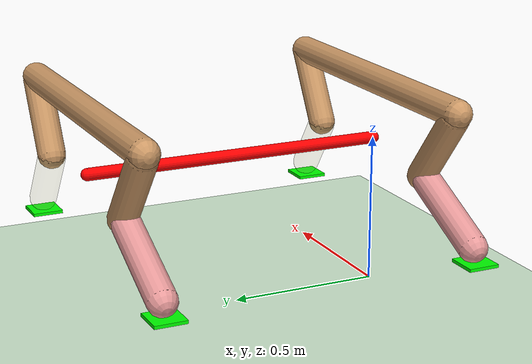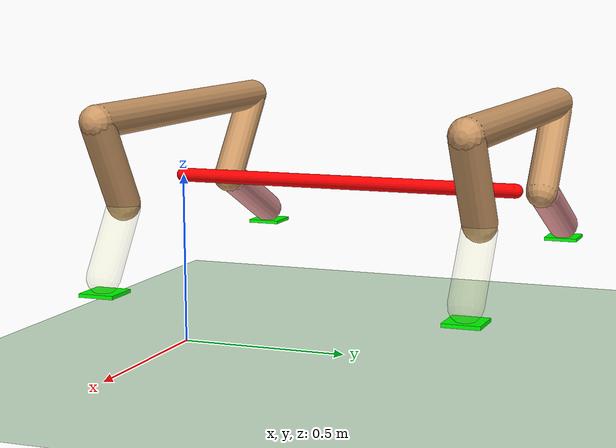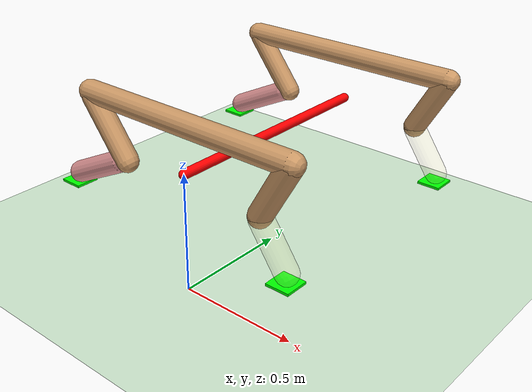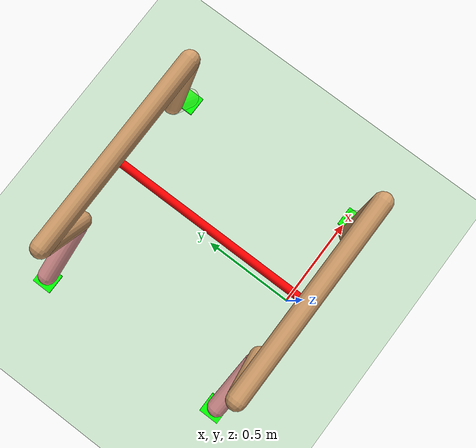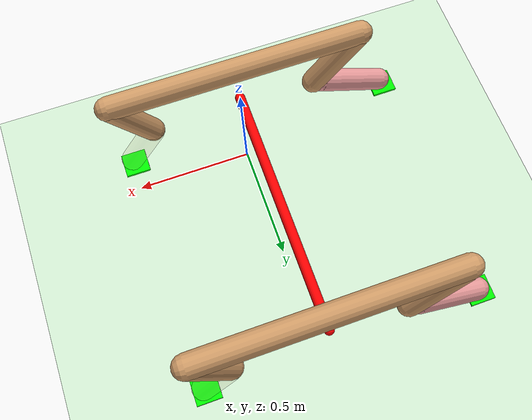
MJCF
<mujoco model="double_cheetah">
  <compiler angle="radian" coordinate="local" inertiafromgeom="true" settotalmass="10"/>
  <default>
    <joint armature=".1" damping=".01" limited="true" solimplimit="0 .8 .03" solreflimit=".02 1" stiffness="8"/>
    <geom conaffinity="0" condim="3" contype="1" friction=".4 .1 .1" rgba="0.8 0.6 .4 1" solimp="0.0 0.8 0.01" solref="0.02 1"/>
  </default>
  <size nstack="300000" nuser_geom="1"/>
  <option gravity="0 0 -9.81" timestep="0.01"/>

  <asset>
    <texture builtin="gradient" height="100" rgb1="1 1 1" rgb2="0 0 0" type="skybox" width="100"/>
    <texture builtin="flat" height="1278" mark="cross" markrgb="1 1 1" name="texgeom" random="0.01" rgb1="0.8 0.6 0.4" rgb2="0.8 0.6 0.4" type="cube" width="127"/>
    <texture builtin="checker" height="100" name="texplane" rgb1="0 0 0" rgb2="0.8 0.8 0.8" type="2d" width="100"/>
    <material name="MatPlane" reflectance="0.5" shininess="1" specular="1" texrepeat="60 60" texture="texplane"/>
    <material name="geom" texture="texgeom" texuniform="true"/>
  </asset>
  <worldbody>
    <light cutoff="100" diffuse="1 1 1" dir="-0 0 -1.3" directional="true" exponent="1" pos="0 0 1.3" specular=".1 .1 .1"/>
    <geom conaffinity="1" condim="6" material="MatPlane" name="floor" pos="0 0 0" rgba="0.8 0.9 0.8 1" size="40 40 40" type="plane"/>

    <!-- Original stick figure -->
    <body name="torso1" pos="0 0 .7">
      <camera name="track" mode="trackcom" pos="0 -3 0.3" xyaxes="1 0 0 0 0 1"/>
      <joint armature="0" axis="1 0 0" damping="0" limited="false" name="rootx1" pos="0 0 0" stiffness="0" type="slide"/>
      <joint armature="0" axis="0 0 1" damping="0" limited="false" name="rootz1" pos="0 0 0" stiffness="0" type="slide"/>
      <joint armature="0" axis="0 1 0" damping="0" limited="false" name="rooty1" pos="0 0 0" stiffness="0" type="hinge"/>
      <geom fromto="-.5 0 0 .5 0 0" name="torso1_geom" size="0.046" type="capsule"/>
      <body name="bthigh1" pos="-.5 0 0">
        <joint axis="0 1 0" damping="6" name="bthigh1" pos="0 0 0" range="-.52 1.05" stiffness="240" type="hinge"/>
        <geom axisangle="0 1 0 -3.8" name="bthigh1_geom" pos=".1 0 -.13" size="0.046 .145" type="capsule"/>
        <body name="bshin1" pos=".16 0 -.25">
          <joint axis="0 1 0" damping="4.5" name="bshin1" pos="0 0 0" range="-.785 .785" stiffness="180" type="hinge"/>
          <geom axisangle="0 1 0 -2.03" name="bshin1_geom" pos="-.14 0 -.07" rgba="0.9 0.6 0.6 1" size="0.046 .15" type="capsule"/>
          <site name="back_contact1" type="box" size="0.05 0.05" rgba="0 1 0 1" pos="-.29 0 -.18"/>
          <body name="bfoot1" pos="-.28 0 -.14"/>
        </body>
      </body>
      <body name="fthigh1" pos=".5 0 0">
        <joint axis="0 1 0" damping="4.5" name="fthigh1" pos="0 0 0" range="-1 .7" stiffness="180" type="hinge"/>
        <geom axisangle="0 1 0 .52" name="fthigh1_geom" pos="-.07 0 -.12" size="0.046 .133" type="capsule"/>
        <body name="fshin1" pos="-.14 0 -.24">
          <joint axis="0 1 0" damping="3" name="fshin1" pos="0 0 0" range="-1.2 .87" stiffness="120" type="hinge"/>
          <geom axisangle="0 1 0 -.6" name="fshin1_geom" pos=".065 0 -.09" rgba="0.9 0.9 0.6 0.2" size="0.046 .106" type="capsule"/>
          <site name="front_contact1" type="box" size="0.05 0.05" rgba="0 1 0 1" pos=".12 0 -.22"/>
          <body name="ffoot1" pos=".13 0 -.18"/>
        </body>
      </body>
    </body>

    <!-- Duplicate stick figure, connected to the original -->
    <body name="torso2" pos="0 1 .7">
      <joint armature="0" axis="1 0 0" damping="0" limited="false" name="rootx2" pos="0 0 0" stiffness="0" type="slide"/>
      <joint armature="0" axis="0 0 1" damping="0" limited="false" name="rootz2" pos="0 0 0" stiffness="0" type="slide"/>
      <joint armature="0" axis="0 1 0" damping="0" limited="false" name="rooty2" pos="0 0 0" stiffness="0" type="hinge"/>
      <geom fromto="-.5 0 0 .5 0 0" name="torso2_geom" size="0.046" type="capsule"/>
      <body name="bthigh2" pos="-.5 0 0">
        <joint axis="0 1 0" damping="6" name="bthigh2" pos="0 0 0" range="-.52 1.05" stiffness="240" type="hinge"/>
        <geom axisangle="0 1 0 -3.8" name="bthigh2_geom" pos=".1 0 -.13" size="0.046 .145" type="capsule"/>
        <body name="bshin2" pos=".16 0 -.25">
          <joint axis="0 1 0" damping="4.5" name="bshin2" pos="0 0 0" range="-.785 .785" stiffness="180" type="hinge"/>
          <geom axisangle="0 1 0 -2.03" name="bshin2_geom" pos="-.14 0 -.07" rgba="0.9 0.6 0.6 1" size="0.046 .15" type="capsule"/>
          <site name="back_contact2" type="box" size="0.05 0.05" rgba="0 1 0 1" pos="-.29 0 -.18"/>
          <body name="bfoot2" pos="-.28 0 -.14"/>
        </body>
      </body>
      <body name="fthigh2" pos=".5 0 0">
        <joint axis="0 1 0" damping="4.5" name="fthigh2" pos="0 0 0" range="-1 .7" stiffness="180" type="hinge"/>
        <geom axisangle="0 1 0 .52" name="fthigh2_geom" pos="-.07 0 -.12" size="0.046 .133" type="capsule"/>
        <body name="fshin2" pos="-.14 0 -.24">
          <joint axis="0 1 0" damping="3" name="fshin2" pos="0 0 0" range="-1.2 .87" stiffness="120" type="hinge"/>
          <geom axisangle="0 1 0 -.6" name="fshin2_geom" pos=".065 0 -.09" rgba="0.9 0.9 0.6 0.2" size="0.046 .106" type="capsule"/>
          <site name="front_contact2" type="box" size="0.05 0.05" rgba="0 1 0 1" pos=".12 0 -.22"/>
          <body name="ffoot2" pos=".13 0 -.18"/>
        </body>
      </body>
    </body>

    <!-- Rigid body to connect the two torsos -->

    <body name="connector" pos="0 0 .5">
      <joint axis="0 1 0" name="connector_joint" pos="0 0 0" type="hinge" range="-0.5 0.5"/>
      <geom fromto="0 0 0 0 1 0" name="connector_geom" size="0.02" type="capsule" rgba="1 0 0 1"/>
      <site name="connector_site" pos="0 0 0"/>
    </body>
  </worldbody>

  <actuator>
    <motor gear="120" joint="bthigh1" name="bthigh1"/>
    <motor gear="90" joint="bshin1" name="bshin1"/>
    <motor gear="120" joint="fthigh1" name="fthigh1"/>
    <motor gear="60" joint="fshin1" name="fshin1"/>
    <motor gear="120" joint="bthigh2" name="bthigh2"/>
    <motor gear="90" joint="bshin2" name="bshin2"/>
    <motor gear="120" joint="fthigh2" name="fthigh2"/>
    <motor gear="60" joint="fshin2" name="fshin2"/>
  </actuator>

  <sensor>
    <touch site="front_contact1"/>
    <touch site="back_contact1"/>
    <touch site="front_contact2"/>
    <touch site="back_contact2"/>
  </sensor>
</mujoco>
